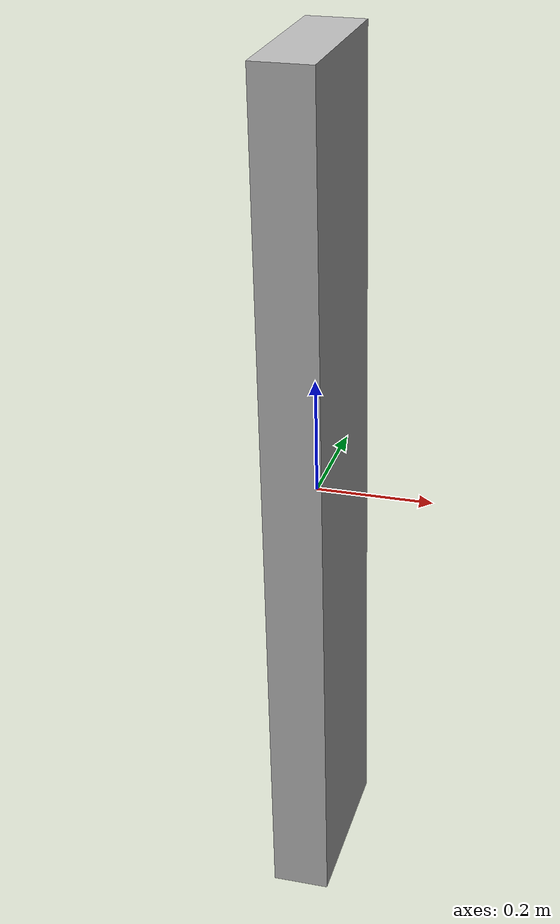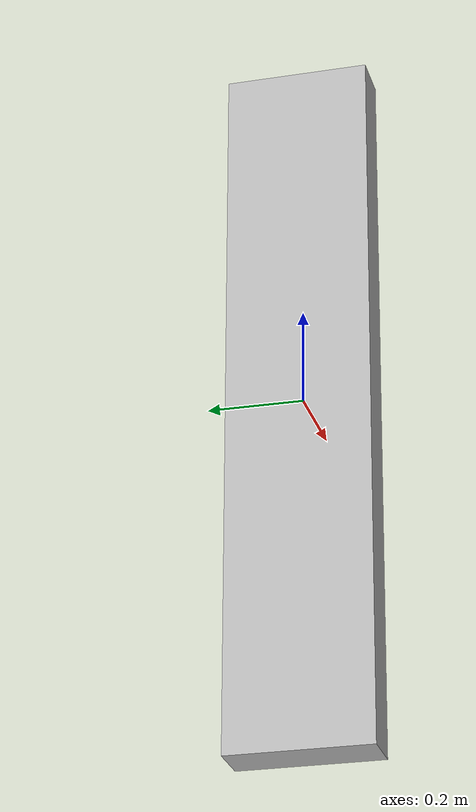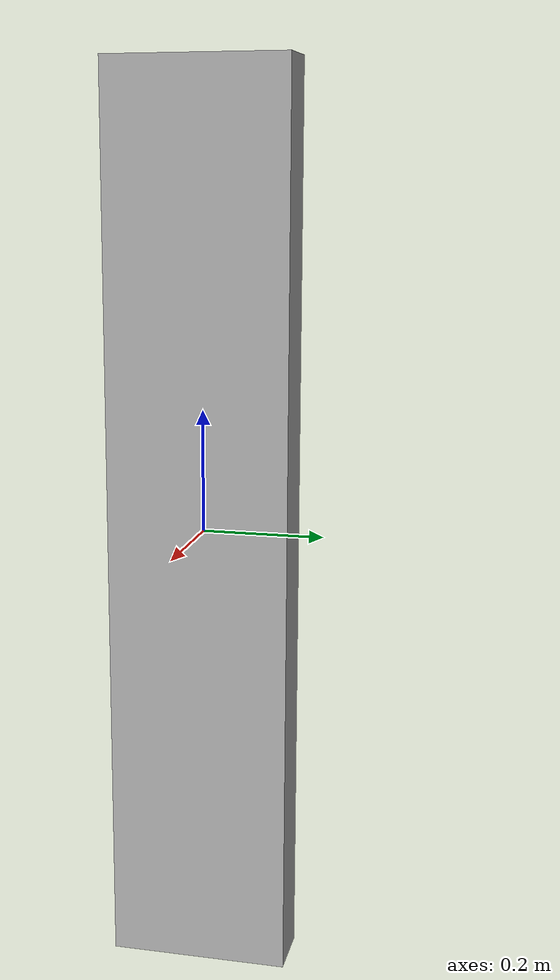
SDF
<?xml version='1.0'?>
<sdf version="1.7">
  <model name="SpringyWall">
    <link name="Wall">
      <inertial>
        <mass>1.0</mass>
        <inertia> <!-- inertias are tricky to compute -->
          <!-- http://gazebosim.org/tutorials?tut=inertia&cat=build_robot -->
          <ixx>0.0083</ixx>       <!-- for a box: ixx = 0.083 * mass * (y*y + z*z) -->
          <ixy>0.0</ixy>         <!-- for a box: ixy = 0 -->
          <ixz>0.0</ixz>         <!-- for a box: ixz = 0 -->
          <iyy>0.0083</iyy>       <!-- for a box: iyy = 0.083 * mass * (x*x + z*z) -->
          <iyz>0.0</iyz>         <!-- for a box: iyz = 0 -->
          <izz>0.0083</izz>       <!-- for a box: izz = 0.083 * mass * (x*x + y*y) -->
        </inertia>
      </inertial>
      <collision name="collision">
        <geometry>
          <box>
            <size>0.1 0.3 1.5</size>
          </box>
        </geometry>
      </collision>
      <visual name="visual">
        <geometry>
          <box>
            <size>0.1 0.3 1.5</size>
          </box>
        </geometry>
      </visual>
    </link>
  </model>
</sdf>
